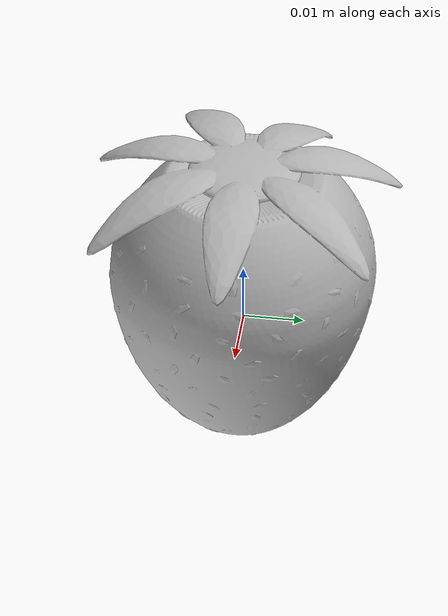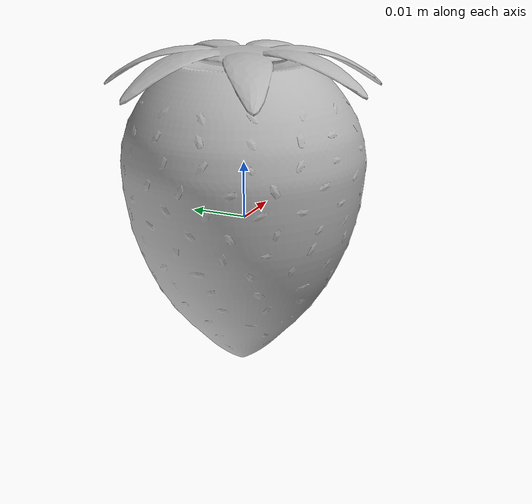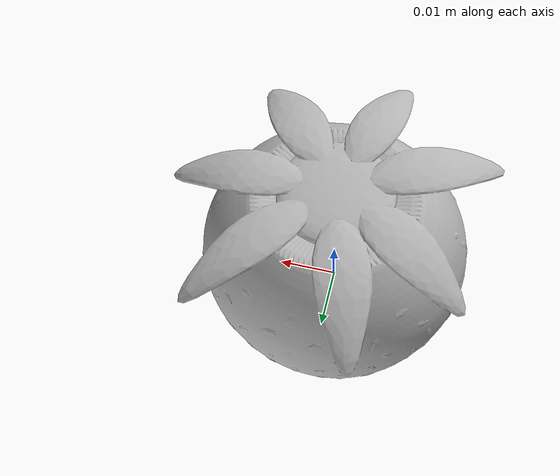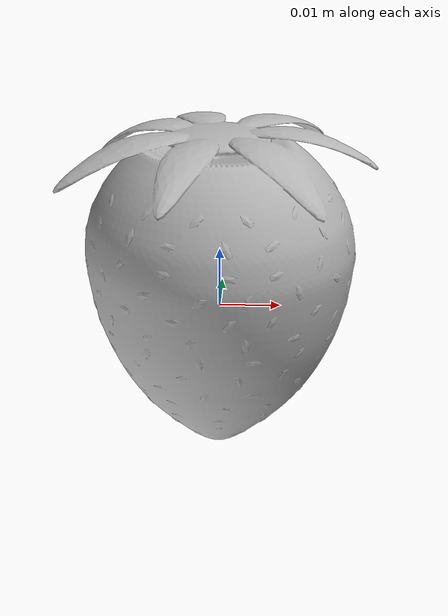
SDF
<?xml version="1.0"?>
<sdf version="1.10">
  <model name="strawberry_ripe">
    <static>false</static>
    <self_collide>false</self_collide>
    <link name="fruit_link">
      <gravity>false</gravity>
      <velocity_decay>
        <linear>0.5</linear>
        <angular>0.5</angular>
      </velocity_decay>
      <inertial>
        <mass>0.030</mass>
        <inertia>
          <ixx>0.0000081</ixx>
          <iyy>0.0000081</iyy>
          <izz>0.0000081</izz>
        </inertia>
      </inertial>
      <collision name="fruit_collision">
        <geometry><sphere><radius>0.026</radius></sphere></geometry>
        <surface>
          <friction>
            <ode><mu>1.0</mu><mu2>1.0</mu2></ode>
          </friction>
        </surface>
      </collision>
      <visual name="fruit_visual">
        <geometry>
          <mesh>
            <uri>model://strawberry_ripe/meshes/strawberry_ripe_visual_v2.obj</uri>
          </mesh>
        </geometry>
      </visual>
      <sensor name="fruit_contact_sensor" type="contact">
        <always_on>true</always_on>
        <update_rate>100</update_rate>
        <contact>
          <collision>fruit_collision</collision>
          <topic>/strawberry/sim/fruit_contacts</topic>
        </contact>
      </sensor>
    </link>
    <plugin filename="gz-sim-pose-publisher-system"
            name="gz::sim::systems::PosePublisher">
      <publish_link_pose>false</publish_link_pose>
      <publish_visual_pose>false</publish_visual_pose>
      <publish_collision_pose>false</publish_collision_pose>
      <publish_sensor_pose>false</publish_sensor_pose>
      <publish_model_pose>true</publish_model_pose>
      <use_pose_vector_msg>true</use_pose_vector_msg>
      <update_frequency>60</update_frequency>
    </plugin>
  </model>
</sdf>
